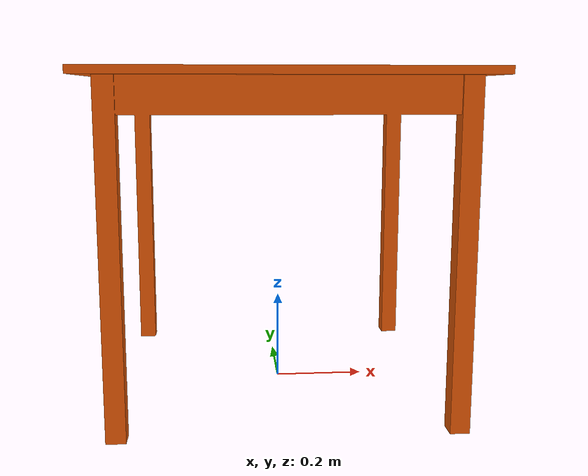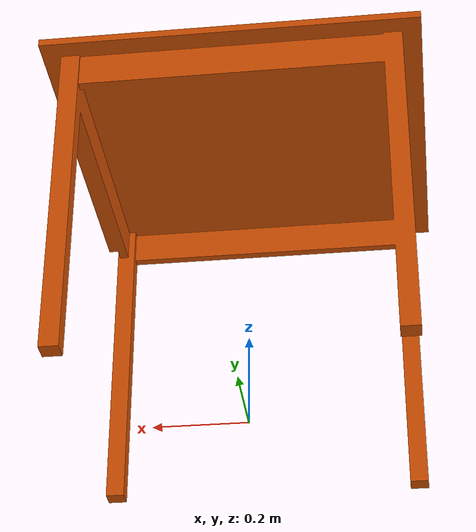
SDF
<?xml version="1.0" ?>
<sdf version="1.5">
  <model name="table_3">
    <static>true</static>
    <link name="table_3">
      <collision name="table_3">
        <pose>0 0 0 0 0 0</pose>
        <geometry>
          <mesh>
            <uri>model://table_3/meshes/model.dae</uri>
          </mesh>
        </geometry>
      </collision>

      <visual name="table_3">
      <cast_shadows>true</cast_shadows>
        <geometry>
          <mesh>
          <uri>model://table_3/meshes/model.dae</uri>
        </mesh>
        </geometry>
      </visual>
    </link>
  </model>
</sdf>
